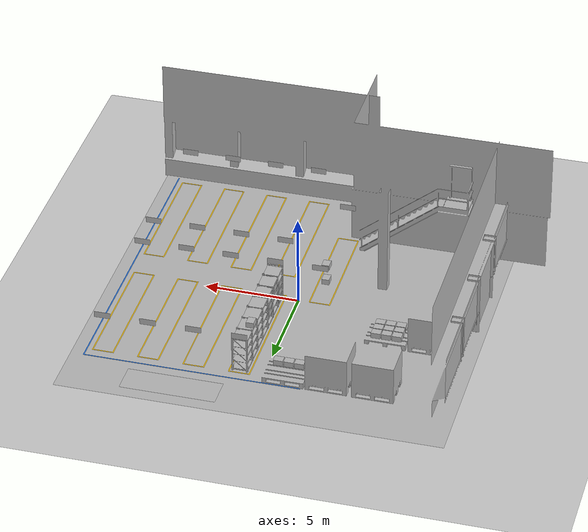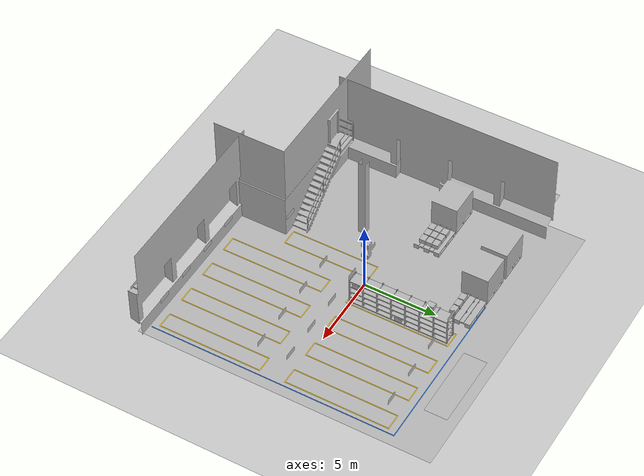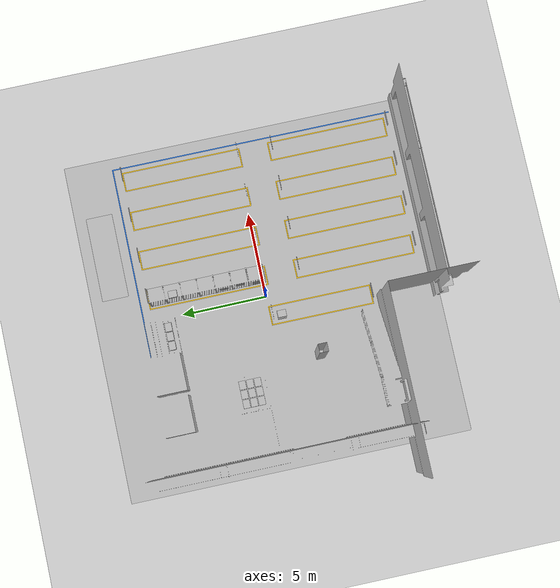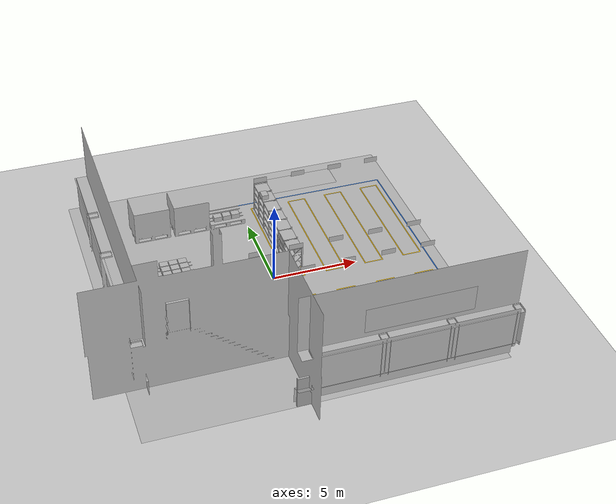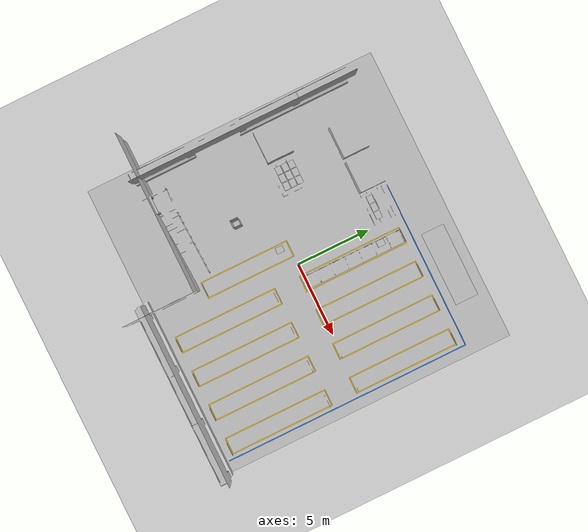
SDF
<sdf version="1.6">
 <world name="default">
  <model name="ground_plane">
   <static>1</static>
   <link name="link">
    <collision name="collision">
     <geometry><plane><normal>0 0 1</normal><size>100 100</size></plane></geometry>
     <surface><friction><ode><mu>100</mu><mu2>50</mu2></ode></friction></surface>
    </collision>
    <visual name="visual">
     <cast_shadows>0</cast_shadows>
     <geometry><plane><normal>0 0 1</normal><size>100 100</size></plane></geometry>
     <material>
      <script><uri>file://media/materials/scripts/gazebo.material</uri><name>Gazebo/Grey</name></script>
     </material>
    </visual>
   </link>
  </model>
  <include>
   <name>zone_A_layout</name>
   <uri>model://zone_a_layout</uri>
   <pose>-0.040107 0.052292 0 0 0 0</pose>
  </include>
  <model name="box_A_011">
   <pose>-1.3451 -0.64854 1.152 0 0 0</pose>
   <link name="link">
    <inertial>
     <mass>2.0</mass>
     <inertia><ixx>0.05667</ixx><iyy>0.04167</iyy><izz>0.06833</izz><ixy>0</ixy><ixz>0</ixz><iyz>0</iyz></inertia>
    </inertial>
    <collision name="collision">
     <geometry><box><size>0.4 0.5 0.3</size></box></geometry>
     <surface><friction><ode><mu>1.0</mu><mu2>1.0</mu2></ode></friction></surface>
    </collision>
    <visual name="visual">
     <cast_shadows>0</cast_shadows>
     <geometry><box><size>0.4 0.5 0.3</size></box></geometry>
     <material>
      <script>
       <uri>model://labeled_boxes/materials/scripts</uri>
       <uri>model://labeled_boxes/materials/textures</uri>
       <name>LabeledBox/A-011</name>
      </script>
     </material>
    </visual>
   </link>
  </model>
  <model name="box_A_012">
   <pose>-1.3451 -0.64854 2.052 0 0 0</pose>
   <link name="link">
    <inertial>
     <mass>2.0</mass>
     <inertia><ixx>0.05667</ixx><iyy>0.04167</iyy><izz>0.06833</izz><ixy>0</ixy><ixz>0</ixz><iyz>0</iyz></inertia>
    </inertial>
    <collision name="collision">
     <geometry><box><size>0.4 0.5 0.3</size></box></geometry>
     <surface><friction><ode><mu>1.0</mu><mu2>1.0</mu2></ode></friction></surface>
    </collision>
    <visual name="visual">
     <cast_shadows>0</cast_shadows>
     <geometry><box><size>0.4 0.5 0.3</size></box></geometry>
     <material>
      <script>
       <uri>model://labeled_boxes/materials/scripts</uri>
       <uri>model://labeled_boxes/materials/textures</uri>
       <name>LabeledBox/A-012</name>
      </script>
     </material>
    </visual>
   </link>
  </model>
  <include>
   <name>rack_A2_1</name>
   <uri>model://warehouse_rack_5lvl_7bay</uri>
   <pose>1.2599 3.2523 0 0 0 0</pose>
  </include>
  <model name="box_A_031">
   <pose>1.0549 0.35551 0.252 0 0 0</pose>
   <link name="link">
    <inertial>
     <mass>2.0</mass>
     <inertia><ixx>0.05667</ixx><iyy>0.04167</iyy><izz>0.06833</izz><ixy>0</ixy><ixz>0</ixz><iyz>0</iyz></inertia>
    </inertial>
    <collision name="collision">
     <geometry><box><size>0.4 0.5 0.3</size></box></geometry>
     <surface><friction><ode><mu>1.0</mu><mu2>1.0</mu2></ode></friction></surface>
    </collision>
    <visual name="visual">
     <cast_shadows>0</cast_shadows>
     <geometry><box><size>0.4 0.5 0.3</size></box></geometry>
     <material>
      <script>
       <uri>model://labeled_boxes/materials/scripts</uri>
       <uri>model://labeled_boxes/materials/textures</uri>
       <name>LabeledBox/A-031</name>
      </script>
     </material>
    </visual>
   </link>
  </model>
  <model name="box_A_032">
   <pose>1.0549 0.35551 0.702 0 0 0</pose>
   <link name="link">
    <inertial>
     <mass>2.0</mass>
     <inertia><ixx>0.05667</ixx><iyy>0.04167</iyy><izz>0.06833</izz><ixy>0</ixy><ixz>0</ixz><iyz>0</iyz></inertia>
    </inertial>
    <collision name="collision">
     <geometry><box><size>0.4 0.5 0.3</size></box></geometry>
     <surface><friction><ode><mu>1.0</mu><mu2>1.0</mu2></ode></friction></surface>
    </collision>
    <visual name="visual">
     <cast_shadows>0</cast_shadows>
     <geometry><box><size>0.4 0.5 0.3</size></box></geometry>
     <material>
      <script>
       <uri>model://labeled_boxes/materials/scripts</uri>
       <uri>model://labeled_boxes/materials/textures</uri>
       <name>LabeledBox/A-032</name>
      </script>
     </material>
    </visual>
   </link>
  </model>
  <model name="box_A_033">
   <pose>1.0549 0.35551 1.152 0 0 0</pose>
   <link name="link">
    <inertial>
     <mass>2.0</mass>
     <inertia><ixx>0.05667</ixx><iyy>0.04167</iyy><izz>0.06833</izz><ixy>0</ixy><ixz>0</ixz><iyz>0</iyz></inertia>
    </inertial>
    <collision name="collision">
     <geometry><box><size>0.4 0.5 0.3</size></box></geometry>
     <surface><friction><ode><mu>1.0</mu><mu2>1.0</mu2></ode></friction></surface>
    </collision>
    <visual name="visual">
     <cast_shadows>0</cast_shadows>
     <geometry><box><size>0.4 0.5 0.3</size></box></geometry>
     <material>
      <script>
       <uri>model://labeled_boxes/materials/scripts</uri>
       <uri>model://labeled_boxes/materials/textures</uri>
       <name>LabeledBox/A-033</name>
      </script>
     </material>
    </visual>
   </link>
  </model>
  <model name="box_A_034">
   <pose>1.4649 0.35551 1.602 0 0 0</pose>
   <link name="link">
    <inertial>
     <mass>2.0</mass>
     <inertia><ixx>0.05667</ixx><iyy>0.04167</iyy><izz>0.06833</izz><ixy>0</ixy><ixz>0</ixz><iyz>0</iyz></inertia>
    </inertial>
    <collision name="collision">
     <geometry><box><size>0.4 0.5 0.3</size></box></geometry>
     <surface><friction><ode><mu>1.0</mu><mu2>1.0</mu2></ode></friction></surface>
    </collision>
    <visual name="visual">
     <cast_shadows>0</cast_shadows>
     <geometry><box><size>0.4 0.5 0.3</size></box></geometry>
     <material>
      <script>
       <uri>model://labeled_boxes/materials/scripts</uri>
       <uri>model://labeled_boxes/materials/textures</uri>
       <name>LabeledBox/A-034</name>
      </script>
     </material>
    </visual>
   </link>
  </model>
  <model name="box_A_035">
   <pose>1.0549 1.3094 1.152 0 0 0</pose>
   <link name="link">
    <inertial>
     <mass>2.0</mass>
     <inertia><ixx>0.05667</ixx><iyy>0.04167</iyy><izz>0.06833</izz><ixy>0</ixy><ixz>0</ixz><iyz>0</iyz></inertia>
    </inertial>
    <collision name="collision">
     <geometry><box><size>0.4 0.5 0.3</size></box></geometry>
     <surface><friction><ode><mu>1.0</mu><mu2>1.0</mu2></ode></friction></surface>
    </collision>
    <visual name="visual">
     <cast_shadows>0</cast_shadows>
     <geometry><box><size>0.4 0.5 0.3</size></box></geometry>
     <material>
      <script>
       <uri>model://labeled_boxes/materials/scripts</uri>
       <uri>model://labeled_boxes/materials/textures</uri>
       <name>LabeledBox/A-035</name>
      </script>
     </material>
    </visual>
   </link>
  </model>
  <model name="box_A_036">
   <pose>1.0549 1.3094 1.602 0 0 0</pose>
   <link name="link">
    <inertial>
     <mass>2.0</mass>
     <inertia><ixx>0.05667</ixx><iyy>0.04167</iyy><izz>0.06833</izz><ixy>0</ixy><ixz>0</ixz><iyz>0</iyz></inertia>
    </inertial>
    <collision name="collision">
     <geometry><box><size>0.4 0.5 0.3</size></box></geometry>
     <surface><friction><ode><mu>1.0</mu><mu2>1.0</mu2></ode></friction></surface>
    </collision>
    <visual name="visual">
     <cast_shadows>0</cast_shadows>
     <geometry><box><size>0.4 0.5 0.3</size></box></geometry>
     <material>
      <script>
       <uri>model://labeled_boxes/materials/scripts</uri>
       <uri>model://labeled_boxes/materials/textures</uri>
       <name>LabeledBox/A-036</name>
      </script>
     </material>
    </visual>
   </link>
  </model>
  <model name="box_A_037">
   <pose>1.0549 2.2809 0.702 0 0 0</pose>
   <link name="link">
    <inertial>
     <mass>2.0</mass>
     <inertia><ixx>0.05667</ixx><iyy>0.04167</iyy><izz>0.06833</izz><ixy>0</ixy><ixz>0</ixz><iyz>0</iyz></inertia>
    </inertial>
    <collision name="collision">
     <geometry><box><size>0.4 0.5 0.3</size></box></geometry>
     <surface><friction><ode><mu>1.0</mu><mu2>1.0</mu2></ode></friction></surface>
    </collision>
    <visual name="visual">
     <cast_shadows>0</cast_shadows>
     <geometry><box><size>0.4 0.5 0.3</size></box></geometry>
     <material>
      <script>
       <uri>model://labeled_boxes/materials/scripts</uri>
       <uri>model://labeled_boxes/materials/textures</uri>
       <name>LabeledBox/A-037</name>
      </script>
     </material>
    </visual>
   </link>
  </model>
  <model name="box_A_038">
   <pose>1.0549 2.2809 1.152 0 0 0</pose>
   <link name="link">
    <inertial>
     <mass>2.0</mass>
     <inertia><ixx>0.05667</ixx><iyy>0.04167</iyy><izz>0.06833</izz><ixy>0</ixy><ixz>0</ixz><iyz>0</iyz></inertia>
    </inertial>
    <collision name="collision">
     <geometry><box><size>0.4 0.5 0.3</size></box></geometry>
     <surface><friction><ode><mu>1.0</mu><mu2>1.0</mu2></ode></friction></surface>
    </collision>
    <visual name="visual">
     <cast_shadows>0</cast_shadows>
     <geometry><box><size>0.4 0.5 0.3</size></box></geometry>
     <material>
      <script>
       <uri>model://labeled_boxes/materials/scripts</uri>
       <uri>model://labeled_boxes/materials/textures</uri>
       <name>LabeledBox/A-038</name>
      </script>
     </material>
    </visual>
   </link>
  </model>
  <model name="box_A_039">
   <pose>1.4649 3.2523 0.252 0 0 0</pose>
   <link name="link">
    <inertial>
     <mass>2.0</mass>
     <inertia><ixx>0.05667</ixx><iyy>0.04167</iyy><izz>0.06833</izz><ixy>0</ixy><ixz>0</ixz><iyz>0</iyz></inertia>
    </inertial>
    <collision name="collision">
     <geometry><box><size>0.4 0.5 0.3</size></box></geometry>
     <surface><friction><ode><mu>1.0</mu><mu2>1.0</mu2></ode></friction></surface>
    </collision>
    <visual name="visual">
     <cast_shadows>0</cast_shadows>
     <geometry><box><size>0.4 0.5 0.3</size></box></geometry>
     <material>
      <script>
       <uri>model://labeled_boxes/materials/scripts</uri>
       <uri>model://labeled_boxes/materials/textures</uri>
       <name>LabeledBox/A-039</name>
      </script>
     </material>
    </visual>
   </link>
  </model>
  <model name="box_A_044">
   <pose>1.0549 5.1951 2.052 0 0 0</pose>
   <link name="link">
    <inertial>
     <mass>2.0</mass>
     <inertia><ixx>0.05667</ixx><iyy>0.04167</iyy><izz>0.06833</izz><ixy>0</ixy><ixz>0</ixz><iyz>0</iyz></inertia>
    </inertial>
    <collision name="collision">
     <geometry><box><size>0.4 0.5 0.3</size></box></geometry>
     <surface><friction><ode><mu>1.0</mu><mu2>1.0</mu2></ode></friction></surface>
    </collision>
    <visual name="visual">
     <cast_shadows>0</cast_shadows>
     <geometry><box><size>0.4 0.5 0.3</size></box></geometry>
     <material>
      <script>
       <uri>model://labeled_boxes/materials/scripts</uri>
       <uri>model://labeled_boxes/materials/textures</uri>
       <name>LabeledBox/A-044</name>
      </script>
     </material>
    </visual>
   </link>
  </model>
  <model name="box_A_147">
   <pose>-1.6882 5.9211 0.4792 0 0 1.5708</pose>
   <link name="link">
    <inertial>
     <mass>2.0</mass>
     <inertia><ixx>0.05667</ixx><iyy>0.04167</iyy><izz>0.06833</izz><ixy>0</ixy><ixz>0</ixz><iyz>0</iyz></inertia>
    </inertial>
    <collision name="collision">
     <geometry><box><size>0.4 0.5 0.3</size></box></geometry>
     <surface><friction><ode><mu>1.0</mu><mu2>1.0</mu2></ode></friction></surface>
    </collision>
    <visual name="visual">
     <cast_shadows>0</cast_shadows>
     <geometry><box><size>0.4 0.5 0.3</size></box></geometry>
     <material>
      <script>
       <uri>model://labeled_boxes/materials/scripts</uri>
       <uri>model://labeled_boxes/materials/textures</uri>
       <name>LabeledBox/A-147</name>
      </script>
     </material>
    </visual>
   </link>
  </model>
  <model name="box_A_150">
   <pose>-1.1382 5.9211 0.4792 0 0 1.5708</pose>
   <link name="link">
    <inertial>
     <mass>2.0</mass>
     <inertia><ixx>0.05667</ixx><iyy>0.04167</iyy><izz>0.06833</izz><ixy>0</ixy><ixz>0</ixz><iyz>0</iyz></inertia>
    </inertial>
    <collision name="collision">
     <geometry><box><size>0.4 0.5 0.3</size></box></geometry>
     <surface><friction><ode><mu>1.0</mu><mu2>1.0</mu2></ode></friction></surface>
    </collision>
    <visual name="visual">
     <cast_shadows>0</cast_shadows>
     <geometry><box><size>0.4 0.5 0.3</size></box></geometry>
     <material>
      <script>
       <uri>model://labeled_boxes/materials/scripts</uri>
       <uri>model://labeled_boxes/materials/textures</uri>
       <name>LabeledBox/A-150</name>
      </script>
     </material>
    </visual>
   </link>
  </model>
  <model name="box_A_153">
   <pose>-0.58817 5.9211 0.4792 0 0 1.5708</pose>
   <link name="link">
    <inertial>
     <mass>2.0</mass>
     <inertia><ixx>0.05667</ixx><iyy>0.04167</iyy><izz>0.06833</izz><ixy>0</ixy><ixz>0</ixz><iyz>0</iyz></inertia>
    </inertial>
    <collision name="collision">
     <geometry><box><size>0.4 0.5 0.3</size></box></geometry>
     <surface><friction><ode><mu>1.0</mu><mu2>1.0</mu2></ode></friction></surface>
    </collision>
    <visual name="visual">
     <cast_shadows>0</cast_shadows>
     <geometry><box><size>0.4 0.5 0.3</size></box></geometry>
     <material>
      <script>
       <uri>model://labeled_boxes/materials/scripts</uri>
       <uri>model://labeled_boxes/materials/textures</uri>
       <name>LabeledBox/A-153</name>
      </script>
     </material>
    </visual>
   </link>
  </model>
  <model name="box_A_156">
   <pose>-5.8868 1.5187 0.4792 0 0 1.5708</pose>
   <link name="link">
    <inertial>
     <mass>2.0</mass>
     <inertia><ixx>0.05667</ixx><iyy>0.04167</iyy><izz>0.06833</izz><ixy>0</ixy><ixz>0</ixz><iyz>0</iyz></inertia>
    </inertial>
    <collision name="collision">
     <geometry><box><size>0.4 0.5 0.3</size></box></geometry>
     <surface><friction><ode><mu>1.0</mu><mu2>1.0</mu2></ode></friction></surface>
    </collision>
    <visual name="visual">
     <cast_shadows>0</cast_shadows>
     <geometry><box><size>0.4 0.5 0.3</size></box></geometry>
     <material>
      <script>
       <uri>model://labeled_boxes/materials/scripts</uri>
       <uri>model://labeled_boxes/materials/textures</uri>
       <name>LabeledBox/A-156</name>
      </script>
     </material>
    </visual>
   </link>
  </model>
  <model name="box_A_157">
   <pose>-5.8868 1.9687 0.4792 0 0 1.5708</pose>
   <link name="link">
    <inertial>
     <mass>2.0</mass>
     <inertia><ixx>0.05667</ixx><iyy>0.04167</iyy><izz>0.06833</izz><ixy>0</ixy><ixz>0</ixz><iyz>0</iyz></inertia>
    </inertial>
    <collision name="collision">
     <geometry><box><size>0.4 0.5 0.3</size></box></geometry>
     <surface><friction><ode><mu>1.0</mu><mu2>1.0</mu2></ode></friction></surface>
    </collision>
    <visual name="visual">
     <cast_shadows>0</cast_shadows>
     <geometry><box><size>0.4 0.5 0.3</size></box></geometry>
     <material>
      <script>
       <uri>model://labeled_boxes/materials/scripts</uri>
       <uri>model://labeled_boxes/materials/textures</uri>
       <name>LabeledBox/A-157</name>
      </script>
     </material>
    </visual>
   </link>
  </model>
  <model name="box_A_158">
   <pose>-5.8868 2.4187 0.4792 0 0 1.5708</pose>
   <link name="link">
    <inertial>
     <mass>2.0</mass>
     <inertia><ixx>0.05667</ixx><iyy>0.04167</iyy><izz>0.06833</izz><ixy>0</ixy><ixz>0</ixz><iyz>0</iyz></inertia>
    </inertial>
    <collision name="collision">
     <geometry><box><size>0.4 0.5 0.3</size></box></geometry>
     <surface><friction><ode><mu>1.0</mu><mu2>1.0</mu2></ode></friction></surface>
    </collision>
    <visual name="visual">
     <cast_shadows>0</cast_shadows>
     <geometry><box><size>0.4 0.5 0.3</size></box></geometry>
     <material>
      <script>
       <uri>model://labeled_boxes/materials/scripts</uri>
       <uri>model://labeled_boxes/materials/textures</uri>
       <name>LabeledBox/A-158</name>
      </script>
     </material>
    </visual>
   </link>
  </model>
  <model name="box_A_159">
   <pose>-5.3368 1.5187 0.4792 0 0 1.5708</pose>
   <link name="link">
    <inertial>
     <mass>2.0</mass>
     <inertia><ixx>0.05667</ixx><iyy>0.04167</iyy><izz>0.06833</izz><ixy>0</ixy><ixz>0</ixz><iyz>0</iyz></inertia>
    </inertial>
    <collision name="collision">
     <geometry><box><size>0.4 0.5 0.3</size></box></geometry>
     <surface><friction><ode><mu>1.0</mu><mu2>1.0</mu2></ode></friction></surface>
    </collision>
    <visual name="visual">
     <cast_shadows>0</cast_shadows>
     <geometry><box><size>0.4 0.5 0.3</size></box></geometry>
     <material>
      <script>
       <uri>model://labeled_boxes/materials/scripts</uri>
       <uri>model://labeled_boxes/materials/textures</uri>
       <name>LabeledBox/A-159</name>
      </script>
     </material>
    </visual>
   </link>
  </model>
  <model name="box_A_160">
   <pose>-5.3368 1.9687 0.4792 0 0 1.5708</pose>
   <link name="link">
    <inertial>
     <mass>2.0</mass>
     <inertia><ixx>0.05667</ixx><iyy>0.04167</iyy><izz>0.06833</izz><ixy>0</ixy><ixz>0</ixz><iyz>0</iyz></inertia>
    </inertial>
    <collision name="collision">
     <geometry><box><size>0.4 0.5 0.3</size></box></geometry>
     <surface><friction><ode><mu>1.0</mu><mu2>1.0</mu2></ode></friction></surface>
    </collision>
    <visual name="visual">
     <cast_shadows>0</cast_shadows>
     <geometry><box><size>0.4 0.5 0.3</size></box></geometry>
     <material>
      <script>
       <uri>model://labeled_boxes/materials/scripts</uri>
       <uri>model://labeled_boxes/materials/textures</uri>
       <name>LabeledBox/A-160</name>
      </script>
     </material>
    </visual>
   </link>
  </model>
  <model name="box_A_161">
   <pose>-5.3368 2.4187 0.4792 0 0 1.5708</pose>
   <link name="link">
    <inertial>
     <mass>2.0</mass>
     <inertia><ixx>0.05667</ixx><iyy>0.04167</iyy><izz>0.06833</izz><ixy>0</ixy><ixz>0</ixz><iyz>0</iyz></inertia>
    </inertial>
    <collision name="collision">
     <geometry><box><size>0.4 0.5 0.3</size></box></geometry>
     <surface><friction><ode><mu>1.0</mu><mu2>1.0</mu2></ode></friction></surface>
    </collision>
    <visual name="visual">
     <cast_shadows>0</cast_shadows>
     <geometry><box><size>0.4 0.5 0.3</size></box></geometry>
     <material>
      <script>
       <uri>model://labeled_boxes/materials/scripts</uri>
       <uri>model://labeled_boxes/materials/textures</uri>
       <name>LabeledBox/A-161</name>
      </script>
     </material>
    </visual>
   </link>
  </model>
  <model name="box_A_162">
   <pose>-4.7868 1.5187 0.4792 0 0 1.5708</pose>
   <link name="link">
    <inertial>
     <mass>2.0</mass>
     <inertia><ixx>0.05667</ixx><iyy>0.04167</iyy><izz>0.06833</izz><ixy>0</ixy><ixz>0</ixz><iyz>0</iyz></inertia>
    </inertial>
    <collision name="collision">
     <geometry><box><size>0.4 0.5 0.3</size></box></geometry>
     <surface><friction><ode><mu>1.0</mu><mu2>1.0</mu2></ode></friction></surface>
    </collision>
    <visual name="visual">
     <cast_shadows>0</cast_shadows>
     <geometry><box><size>0.4 0.5 0.3</size></box></geometry>
     <material>
      <script>
       <uri>model://labeled_boxes/materials/scripts</uri>
       <uri>model://labeled_boxes/materials/textures</uri>
       <name>LabeledBox/A-162</name>
      </script>
     </material>
    </visual>
   </link>
  </model>
  <model name="box_A_163">
   <pose>-4.7868 1.9687 0.4792 0 0 1.5708</pose>
   <link name="link">
    <inertial>
     <mass>2.0</mass>
     <inertia><ixx>0.05667</ixx><iyy>0.04167</iyy><izz>0.06833</izz><ixy>0</ixy><ixz>0</ixz><iyz>0</iyz></inertia>
    </inertial>
    <collision name="collision">
     <geometry><box><size>0.4 0.5 0.3</size></box></geometry>
     <surface><friction><ode><mu>1.0</mu><mu2>1.0</mu2></ode></friction></surface>
    </collision>
    <visual name="visual">
     <cast_shadows>0</cast_shadows>
     <geometry><box><size>0.4 0.5 0.3</size></box></geometry>
     <material>
      <script>
       <uri>model://labeled_boxes/materials/scripts</uri>
       <uri>model://labeled_boxes/materials/textures</uri>
       <name>LabeledBox/A-163</name>
      </script>
     </material>
    </visual>
   </link>
  </model>
  <model name="box_A_164">
   <pose>-4.7868 2.4187 0.4792 0 0 1.5708</pose>
   <link name="link">
    <inertial>
     <mass>2.0</mass>
     <inertia><ixx>0.05667</ixx><iyy>0.04167</iyy><izz>0.06833</izz><ixy>0</ixy><ixz>0</ixz><iyz>0</iyz></inertia>
    </inertial>
    <collision name="collision">
     <geometry><box><size>0.4 0.5 0.3</size></box></geometry>
     <surface><friction><ode><mu>1.0</mu><mu2>1.0</mu2></ode></friction></surface>
    </collision>
    <visual name="visual">
     <cast_shadows>0</cast_shadows>
     <geometry><box><size>0.4 0.5 0.3</size></box></geometry>
     <material>
      <script>
       <uri>model://labeled_boxes/materials/scripts</uri>
       <uri>model://labeled_boxes/materials/textures</uri>
       <name>LabeledBox/A-164</name>
      </script>
     </material>
    </visual>
   </link>
  </model>
  <model name="workcell_SW">
   <static>1</static>
   <link name="link">
    <visual name="visual">
     <geometry><mesh><uri>model://our_workcell/meshes/mesh.dae</uri></mesh></geometry>
    </visual>
    <collision name="floor">
     <pose>0 0 -0.1 0 -0 0</pose>
     <geometry><box><size>20.1026 20.1026 0.2</size></box></geometry>
     <surface><contact><ode><max_vel>0</max_vel><min_depth>0.001</min_depth></ode></contact></surface>
    </collision>
    <collision name="wall1">
     <pose>4.13686 -10.0212 3.48855 0 -0 0</pose>
     <geometry><box><size>12.0768 0.72902 6.97771</size></box></geometry>
    </collision>
    <collision name="wall2">
     <pose>-6.58151 -8.924 3.48855 0 -0 0</pose>
     <geometry><box><size>10.5921 5.00198 6.97771</size></box></geometry>
    </collision>
    <collision name="wall3">
     <pose>-9.25721 0.6135 3.48855 0 -0 0</pose>
     <geometry><box><size>0.72902 15.2908 6.97771</size></box></geometry>
    </collision>
    <collision name="large_pallet1">
     <pose>-3.33609 6.31883 1.04257 0 -0 0</pose>
     <geometry><box><size>2.14726 1.79349 2.08514</size></box></geometry>
    </collision>
    <collision name="large_pallet2">
     <pose>-5.74492 6.31883 1.04257 0 -0 0</pose>
     <geometry><box><size>2.14726 1.79349 2.08514</size></box></geometry>
    </collision>
    <collision name="large_pallet3">
     <pose>-7.55868 1.91644 1.04257 0 -0 0</pose>
     <geometry><box><size>2.14726 1.79432 2.08514</size></box></geometry>
    </collision>
    <collision name="empty_pallet1">
     <pose>-5.29667 1.91644 0.1636 0 -0 0</pose>
     <geometry><box><size>2.14726 1.79349 0.3272</size></box></geometry>
    </collision>
    <collision name="box_pallet1">
     <pose>-1.09806 6.31883 0.1636 0 -0 0</pose>
     <geometry><box><size>2.14726 1.79349 0.3272</size></box></geometry>
    </collision>
    <collision name="pole3">
     <pose>-3.93786 -2.39478 3.02208 0 -0 0</pose>
     <geometry><box><size>0.49161 0.49161 6.04415</size></box></geometry>
    </collision>
   </link>
   <pose>-0.040107 0.052292 0 0 0 0</pose>
  </model>
 </world>
</sdf>
